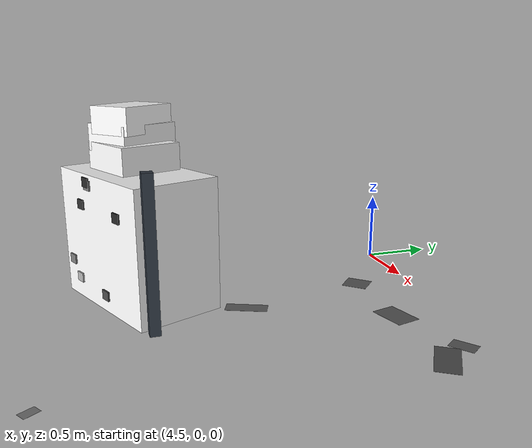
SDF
<sdf version="1.9">
 <world name="warehouse_irregular">
  <model name="concrete_patch_23">
   <static>true</static>
   <pose>6.196264489521482 -0.24921566618229107 0.0006 0 0 2.198401988689489</pose>
   <link name="body">
    <visual name="surface">
     <geometry><box><size>0.10725160107914228 0.1589254249871139 0.001</size></box></geometry>
     <material>
      <ambient>0.3536386838716532 0.3536386838716532 0.3536386838716532 1</ambient>
      <diffuse>0.3536386838716532 0.3536386838716532 0.3536386838716532 1</diffuse>
     </material>
    </visual>
   </link>
  </model>
  <model name="concrete_patch_33">
   <static>true</static>
   <pose>5.081735357935646 -0.40106643044770607 0.0006 0 0 0.8193517189911121</pose>
   <link name="body">
    <visual name="surface">
     <geometry><box><size>0.1789058979567175 0.17164525929943822 0.001</size></box></geometry>
     <material>
      <ambient>0.3571439767082534 0.3571439767082534 0.3571439767082534 1</ambient>
      <diffuse>0.3571439767082534 0.3571439767082534 0.3571439767082534 1</diffuse>
     </material>
    </visual>
   </link>
  </model>
  <model name="concrete_patch_82">
   <static>true</static>
   <pose>6.3134348280497505 -0.4354748874669738 0.0006 0 0 2.565186795135298</pose>
   <link name="body">
    <visual name="surface">
     <geometry><box><size>0.31231849240654935 0.15102710134797176 0.001</size></box></geometry>
     <material>
      <ambient>0.3095274507291014 0.3095274507291014 0.3095274507291014 1</ambient>
      <diffuse>0.3095274507291014 0.3095274507291014 0.3095274507291014 1</diffuse>
     </material>
    </visual>
   </link>
  </model>
  <model name="concrete_patch_90">
   <static>true</static>
   <pose>5.686129235464268 -0.41418153912532496 0.0006 0 0 0.2526749334922149</pose>
   <link name="body">
    <visual name="surface">
     <geometry><box><size>0.25060560156175726 0.172885491657441 0.001</size></box></geometry>
     <material>
      <ambient>0.3466347724646848 0.3466347724646848 0.3466347724646848 1</ambient>
      <diffuse>0.3466347724646848 0.3466347724646848 0.3466347724646848 1</diffuse>
     </material>
    </visual>
   </link>
  </model>
  <model name="concrete_patch_115">
   <static>true</static>
   <pose>6.175630495374097 -2.635986907343675 0.0006 0 0 -0.9820333492634683</pose>
   <link name="body">
    <visual name="surface">
     <geometry><box><size>0.09393625451402138 0.06263814595718555 0.001</size></box></geometry>
     <material>
      <ambient>0.45754842315671146 0.45754842315671146 0.45754842315671146 1</ambient>
      <diffuse>0.45754842315671146 0.45754842315671146 0.45754842315671146 1</diffuse>
     </material>
    </visual>
   </link>
  </model>
  <model name="concrete_patch_222">
   <static>true</static>
   <pose>5.274711063191788 -1.307107067283269 0.0006 0 0 1.1771286057469528</pose>
   <link name="body">
    <visual name="surface">
     <geometry><box><size>0.2833893901683376 0.11189113839241559 0.001</size></box></geometry>
     <material>
      <ambient>0.37817304365902604 0.37817304365902604 0.37817304365902604 1</ambient>
      <diffuse>0.37817304365902604 0.37817304365902604 0.37817304365902604 1</diffuse>
     </material>
    </visual>
   </link>
  </model>
  <model name="cabinet_35">
   <static>true</static>
   <pose>4.881962565705713 -1.9488574151722173 0.4474180788423433 0 0 0.4104070132629334</pose>
   <link name="body">
    <visual name="surface">
     <geometry><box><size>1 0.6 0.8948361576846866</size></box></geometry>
     <material>
      <ambient>1 1 1 1</ambient>
      <diffuse>1 1 1 1</diffuse>
      <pbr>
       <metal>
        <albedo_map>model://feature_warehouse_materials/textures/storage_35.png</albedo_map>
        <roughness>.9</roughness>
        <metalness>0</metalness>
       </metal>
      </pbr>
     </material>
    </visual>
    <collision name="solid"><geometry><box><size>1 0.6 0.8948361576846866</size></box></geometry></collision>
   </link>
  </model>
  <model name="panel_35_0_-1">
   <static>true</static>
   <pose>5.249672925185689 -2.1214824276503386 0.6770797647701537 0 0 0.4104070132629334</pose>
   <link name="body">
    <visual name="surface">
     <geometry><box><size>0.08 0.012 0.065</size></box></geometry>
     <material>
      <ambient>0.15200293014078287 0.15200293014078287 0.15200293014078287 1</ambient>
      <diffuse>0.15200293014078287 0.15200293014078287 0.15200293014078287 1</diffuse>
     </material>
    </visual>
   </link>
  </model>
  <model name="panel_35_0_1">
   <static>true</static>
   <pose>5.006293554255162 -1.5621377380309043 0.6770797647701537 0 0 0.4104070132629334</pose>
   <link name="body">
    <visual name="surface">
     <geometry><box><size>0.08 0.012 0.065</size></box></geometry>
     <material>
      <ambient>0.5073049823250425 0.5073049823250425 0.5073049823250425 1</ambient>
      <diffuse>0.5073049823250425 0.5073049823250425 0.5073049823250425 1</diffuse>
     </material>
    </visual>
   </link>
  </model>
  <model name="panel_35_1_-1">
   <static>true</static>
   <pose>4.895056056621242 -2.275781613812791 0.8405488798671816 0 0 0.4104070132629334</pose>
   <link name="body">
    <visual name="surface">
     <geometry><box><size>0.08 0.012 0.065</size></box></geometry>
     <material>
      <ambient>0.15172719837648369 0.15172719837648369 0.15172719837648369 1</ambient>
      <diffuse>0.15172719837648369 0.15172719837648369 0.15172719837648369 1</diffuse>
     </material>
    </visual>
   </link>
  </model>
  <model name="panel_35_1_1">
   <static>true</static>
   <pose>4.651676685690715 -1.7164369241933572 0.8405488798671816 0 0 0.4104070132629334</pose>
   <link name="body">
    <visual name="surface">
     <geometry><box><size>0.08 0.012 0.065</size></box></geometry>
     <material>
      <ambient>0.5833660821900767 0.5833660821900767 0.5833660821900767 1</ambient>
      <diffuse>0.5833660821900767 0.5833660821900767 0.5833660821900767 1</diffuse>
     </material>
    </visual>
   </link>
  </model>
  <model name="panel_35_2_-1">
   <static>true</static>
   <pose>4.909854488787158 -2.2693425911883893 0.8241893179479624 0 0 0.4104070132629334</pose>
   <link name="body">
    <visual name="surface">
     <geometry><box><size>0.08 0.012 0.065</size></box></geometry>
     <material>
      <ambient>0.47478924784837606 0.47478924784837606 0.47478924784837606 1</ambient>
      <diffuse>0.47478924784837606 0.47478924784837606 0.47478924784837606 1</diffuse>
     </material>
    </visual>
   </link>
  </model>
  <model name="panel_35_2_1">
   <static>true</static>
   <pose>4.66647511785663 -1.7099979015689553 0.8241893179479624 0 0 0.4104070132629334</pose>
   <link name="body">
    <visual name="surface">
     <geometry><box><size>0.08 0.012 0.065</size></box></geometry>
     <material>
      <ambient>0.17929916520314396 0.17929916520314396 0.17929916520314396 1</ambient>
      <diffuse>0.17929916520314396 0.17929916520314396 0.17929916520314396 1</diffuse>
     </material>
    </visual>
   </link>
  </model>
  <model name="panel_35_3_-1">
   <static>true</static>
   <pose>4.809127782627784 -2.3131703110826316 0.6799320656876879 0 0 0.4104070132629334</pose>
   <link name="body">
    <visual name="surface">
     <geometry><box><size>0.08 0.012 0.065</size></box></geometry>
     <material>
      <ambient>0.18063739145721366 0.18063739145721366 0.18063739145721366 1</ambient>
      <diffuse>0.18063739145721366 0.18063739145721366 0.18063739145721366 1</diffuse>
     </material>
    </visual>
   </link>
  </model>
  <model name="panel_35_4_-1">
   <static>true</static>
   <pose>4.6395421138994095 -2.386959611562138 0.25513595820580637 0 0 0.4104070132629334</pose>
   <link name="body">
    <visual name="surface">
     <geometry><box><size>0.08 0.012 0.065</size></box></geometry>
     <material>
      <ambient>0.47413959688970464 0.47413959688970464 0.47413959688970464 1</ambient>
      <diffuse>0.47413959688970464 0.47413959688970464 0.47413959688970464 1</diffuse>
     </material>
    </visual>
   </link>
  </model>
  <model name="panel_35_5_-1">
   <static>true</static>
   <pose>5.061601565426297 -2.2033151330961203 0.11462406699617753 0 0 0.4104070132629334</pose>
   <link name="body">
    <visual name="surface">
     <geometry><box><size>0.08 0.012 0.065</size></box></geometry>
     <material>
      <ambient>0.2849590341284725 0.2849590341284725 0.2849590341284725 1</ambient>
      <diffuse>0.2849590341284725 0.2849590341284725 0.2849590341284725 1</diffuse>
     </material>
    </visual>
   </link>
  </model>
  <model name="panel_35_5_1">
   <static>true</static>
   <pose>4.81822219449577 -1.6439704434766864 0.11462406699617753 0 0 0.4104070132629334</pose>
   <link name="body">
    <visual name="surface">
     <geometry><box><size>0.08 0.012 0.065</size></box></geometry>
     <material>
      <ambient>0.3959033886949721 0.3959033886949721 0.3959033886949721 1</ambient>
      <diffuse>0.3959033886949721 0.3959033886949721 0.3959033886949721 1</diffuse>
     </material>
    </visual>
   </link>
  </model>
  <model name="panel_35_6_-1">
   <static>true</static>
   <pose>4.726644607387125 -2.3490599935538863 0.1448510427829095 0 0 0.4104070132629334</pose>
   <link name="body">
    <visual name="surface">
     <geometry><box><size>0.08 0.012 0.065</size></box></geometry>
     <material>
      <ambient>0.680791420287913 0.680791420287913 0.680791420287913 1</ambient>
      <diffuse>0.680791420287913 0.680791420287913 0.680791420287913 1</diffuse>
     </material>
    </visual>
   </link>
  </model>
  <model name="carton_35_0">
   <static>true</static>
   <pose>4.839144298756098 -1.9488574151722173 0.9948361576846866 0 0 0.4104070132629334</pose>
   <link name="body">
    <visual name="surface">
     <geometry><box><size>0.45 0.42 0.18</size></box></geometry>
     <material>
      <ambient>1 1 1 1</ambient>
      <diffuse>1 1 1 1</diffuse>
      <pbr>
       <metal>
        <albedo_map>model://feature_warehouse_materials/textures/storage_35.png</albedo_map>
        <roughness>.9</roughness>
        <metalness>0</metalness>
       </metal>
      </pbr>
     </material>
    </visual>
    <collision name="solid"><geometry><box><size>0.45 0.42 0.18</size></box></geometry></collision>
   </link>
  </model>
  <model name="carton_35_1">
   <static>true</static>
   <pose>4.782784680361401 -1.9488574151722173 1.1148361576846866 0 0 0.5604070132629334</pose>
   <link name="body">
    <visual name="surface">
     <geometry><box><size>0.38 0.42 0.18</size></box></geometry>
     <material>
      <ambient>1 1 1 1</ambient>
      <diffuse>1 1 1 1</diffuse>
      <pbr>
       <metal>
        <albedo_map>model://feature_warehouse_materials/textures/storage_35.png</albedo_map>
        <roughness>.9</roughness>
        <metalness>0</metalness>
       </metal>
      </pbr>
     </material>
    </visual>
    <collision name="solid"><geometry><box><size>0.38 0.42 0.18</size></box></geometry></collision>
   </link>
  </model>
  <model name="carton_35_2">
   <static>true</static>
   <pose>4.817608752370013 -1.9488574151722173 1.2348361576846867 0 0 0.7104070132629334</pose>
   <link name="body">
    <visual name="surface">
     <geometry><box><size>0.31 0.42 0.18</size></box></geometry>
     <material>
      <ambient>1 1 1 1</ambient>
      <diffuse>1 1 1 1</diffuse>
      <pbr>
       <metal>
        <albedo_map>model://feature_warehouse_materials/textures/storage_35.png</albedo_map>
        <roughness>.9</roughness>
        <metalness>0</metalness>
       </metal>
      </pbr>
     </material>
    </visual>
    <collision name="solid"><geometry><box><size>0.31 0.42 0.18</size></box></geometry></collision>
   </link>
  </model>
  <model name="post_35_1">
   <static>true</static>
   <pose>5.501962565705713 -1.9488574151722173 0.5 0 0 0</pose>
   <link name="body">
    <visual name="surface">
     <geometry><box><size>0.07 0.07 1</size></box></geometry>
     <material><ambient>0.18 0.21 0.25 1</ambient><diffuse>0.18 0.21 0.25 1</diffuse></material>
    </visual>
    <collision name="solid"><geometry><box><size>0.07 0.07 1</size></box></geometry></collision>
   </link>
  </model>
 </world>
</sdf>
